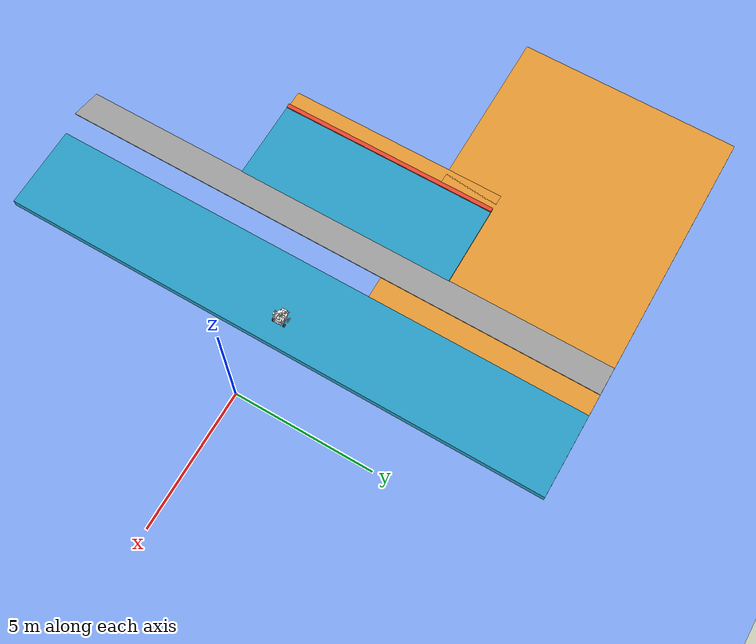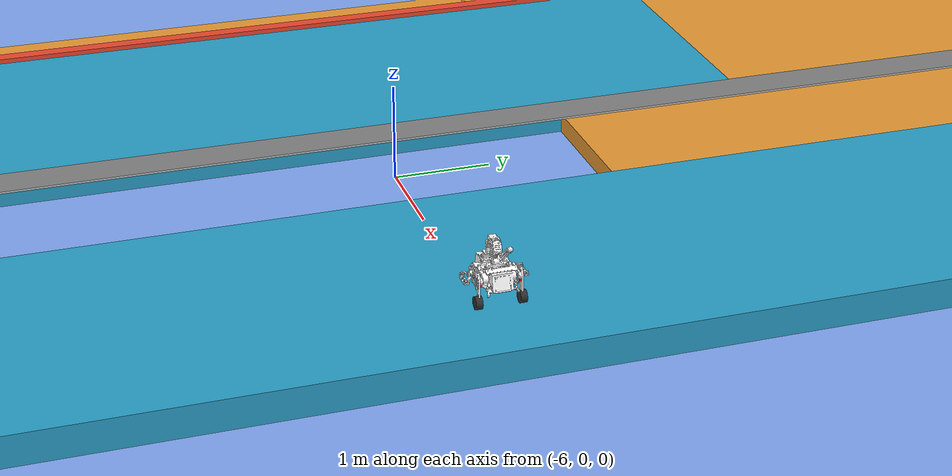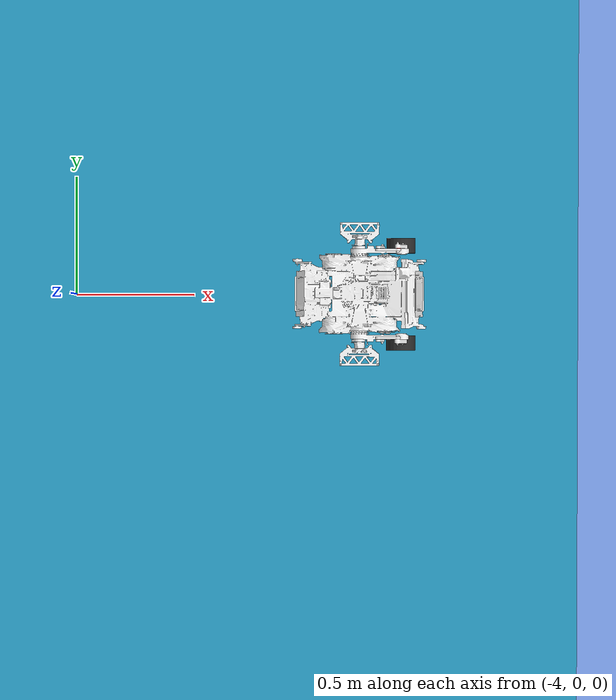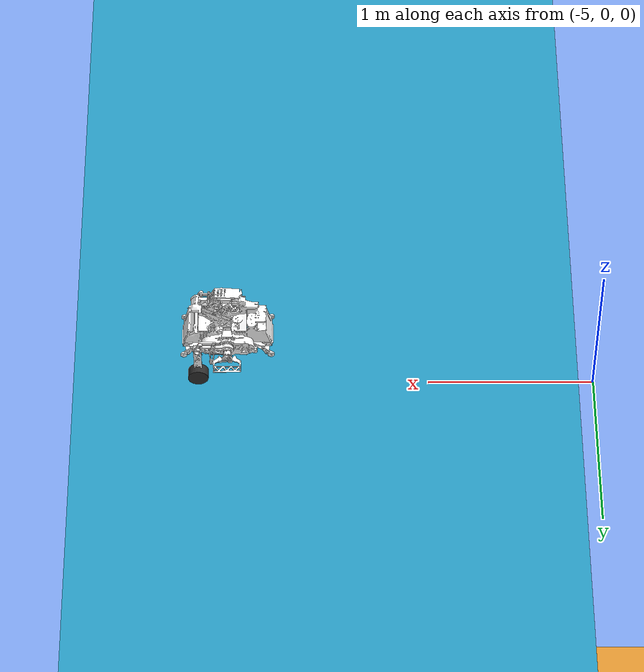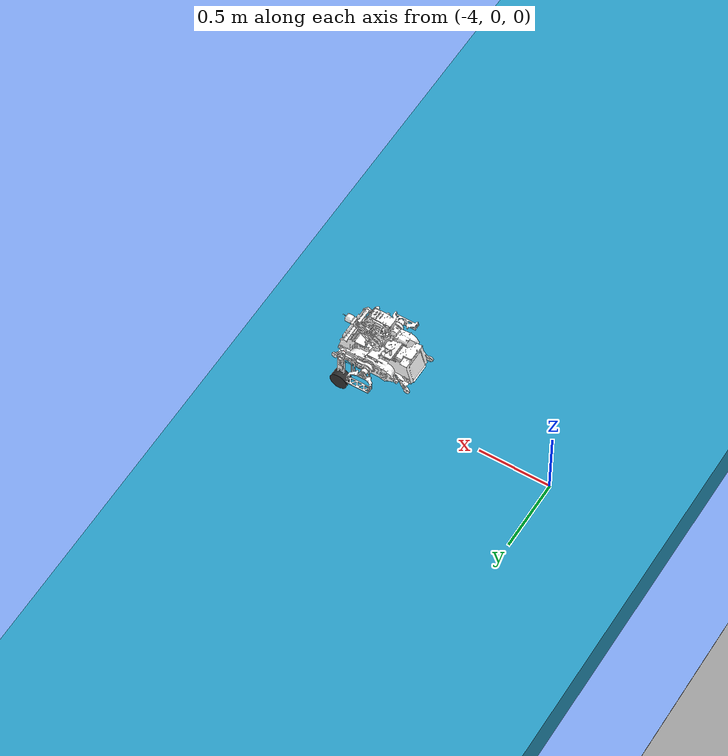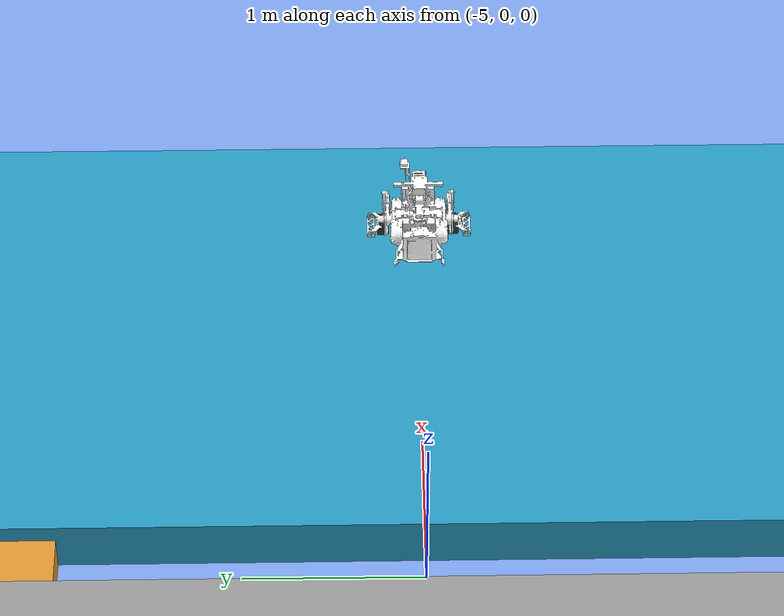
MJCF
<mujoco model="infantry_V2">
  <compiler angle="radian"/>
  <option solver="Newton" iterations="100" tolerance="1e-10"/>

  <default>
    <geom contype="1" conaffinity="2"/>
  </default>

  <asset>
    <mesh name="base_Link_del" file="base_Link_del.STL"/>
    <mesh name="rf0_Link" file="rf0_Link.STL"/>
    <mesh name="rf1_Link" file="rf1_Link.STL"/>
    <mesh name="r_wheel_Link" file="r_wheel_Link.STL"/>
    <mesh name="lf0_Link" file="lf0_Link.STL"/>
    <mesh name="lf1_Link" file="lf1_Link.STL"/>
    <mesh name="l_wheel_Link" file="l_wheel_Link.STL"/>
    <mesh name="r20_Link" file="r20_Link.STL"/>
    <mesh name="r21_Link" file="r21_Link.STL"/>
    <mesh name="r22_Link" file="r22_Link.STL"/>
    <mesh name="r23_Link" file="r23_Link.STL"/>
    <mesh name="l20_Link" file="l20_Link.STL"/>
    <mesh name="l21_Link" file="l21_Link.STL"/>
    <mesh name="l22_Link" file="l22_Link.STL"/>
    <mesh name="l23_Link" file="l23_Link.STL"/>

    <material name="floor_gray"
          rgba="0.65 0.65 0.65 1"
          specular="0.15"
          shininess="0.6"/>

    <!-- 蓝色方格纹理 -->
    <texture name="blue_checker_tex"
           type="2d"
           builtin="checker"
           width="512"
           height="512"
           rgb1="0.2 0.4 0.9"
           rgb2="0.8 0.9 1.0"/>

    <!-- 地面材质 -->
    <material name="blue_checker_mat"
            texture="blue_checker_tex"
            texrepeat="20 20"
            reflectance="0.1"/>
    <hfield name="terrain_hf"
            file="terrain_hfield.png"
            size="3.2 2.4 0.45 0.06"/>
  </asset>

<worldbody>
  <geom name="floor" type="plane" size="40 40 0.1"
    material="blue_checker_mat"
    contype="2" conaffinity="1"/>

  <geom name="step_20cm"
      type="box"
      pos="-10.0 0.0 0.10"
      size="0.30 4.0 0.10"
      rgba="0.9 0.6 0.2 1"
      contype="2" conaffinity="1"/>

    <geom name="step_20rightcm"
      type="box"
      pos="-10.0 6.0 0.10"
      size="6.0 4.0 0.10"
      rgba="0.9 0.6 0.2 1"
      contype="2" conaffinity="1"/>
  <geom name="step_35cm"
      type="box"
      pos="-9.625 0.0 0.175"
      size="0.075 4.0 0.175"
      rgba="0.92 0.28 0.18 1"
      contype="2" conaffinity="1"/>
  <geom name="platform_30cm"
      type="box"
      pos="-8.05 0.0 0.15"
      size="1.5 4.0 0.15"
      rgba="0.16 0.62 0.78 1"
      contype="2" conaffinity="1"/>

  <geom name="fly_ramp_1"
      type="box"
      pos="-6.11 0.0 0.46"
      euler="0 -0.296706 0"
      size="0.5986 10 0.01"
      rgba="0.6 0.6 0.6 1"
      contype="2" conaffinity="1"/>
  <geom name="landing_box"
      type="box"
      pos="-3.38 0.0 0.15"
      size="1.5 10.0 0.15"
      rgba="0.16 0.62 0.78 1"
      contype="2" conaffinity="1"/>

    <body name="base_Link_del" pos="-2.8 0 0.5" quat="1 0 0 0">
    <freejoint/>
    <inertial
    pos="-0.00406060 0.0008523 0.09714204"
    mass="16.8775740"
    fullinertia="0.3595155 0.35249 0.45655 -0.00174358 -0.00825907 -0.00214156"/>
    <site name="imu_site" pos="0 0 0" size="0.005"/>
    <geom name="base_Link_del_geom" type="mesh" rgba="1 1 1 1" mesh="base_Link_del"
            condim="1" friction="0 0 0"/>
    <body name="rf0_Link" pos="0 -0.1877 0.08725" quat="0.707105 0.707108 0 0">
      <inertial pos="0.0552763 -0.0165544 -0.00927161" quat="-0.005176 0.693173 0.0544357 0.718694" mass="1.1132" diaginertia="0.00641833 0.00468513 0.00204569"/>
      <joint name="rf0_Joint" pos="0 0 0" axis="0 0 1" armature="0" damping="0.03" frictionloss="0.015" range="-100 100" actuatorfrcrange="-100 100"/>
      <geom type="mesh" rgba="1 1 1 1" mesh="rf0_Link"/>
      <site name="Right_front_site1" pos="0.09435 0 0" size="0.005" rgba="1 0 0 1"/>
      <site name="right_lf0_qitanhuang" pos ="0.0155 -0.0445 -0.008" size="0.005" rgba="1 0 0 1"/>
      <body name="rf1_Link" pos="0.17472 0 0">
        <inertial pos="-0.00283459 -0.0710676 0.0068255" quat="0.483182 0.50274 -0.490133 0.523027" mass="0.306873" diaginertia="0.0025405 0.00248016 8.5602e-05"/>
        <joint name="rf1_Joint" pos="0 0 0" axis="0 0 1" armature="0.00" damping="0.03" frictionloss="0.015" limited="true" range="-1.1 0.63" actuatorfrcrange="-100 100"/>
        <geom type="mesh" rgba="1 1 1 1" mesh="rf1_Link"/>
        <site name="Right_front_site2" pos="-0.0160931 0.0609099 0" size="0.005" rgba="1 0 0 1"/>
        <site name="right_lf1_qitanhuang" pos ="0.005 -0.046 -0.005" size="0.01" rgba="1 0 0 1"/>
        <body name="r_wheel_Link" pos="0 -0.208 0.016">
          <inertial pos="4.1184e-06 -0.00019289 0.019562" mass="0.4904" fullinertia="0.00033958 0.00034133 0.0005817 0 0 0"/>
          <joint name="r_wheel_Joint" pos="0 0 0" axis="0 0 1" damping="0.002" frictionloss="0.001" actuatorfrcrange="-100 100"/>
          <geom type="cylinder" size="0.06 0.03075" rgba="0.18 0.18 0.18 1"/>
        </body>
      </body>
    </body>
    <body name="lf0_Link" pos="0 0.1877 0.08725" quat="0.707105 -0.707108 0 0">
      <inertial pos="0.055403 0.016584 -0.0092702" quat="0.00463484 0.693099 -0.0538381 0.718814" mass="1.1128" diaginertia="0.00641157 0.0046755 0.00204815"/>
      <joint name="lf0_Joint" pos="0 0 0" axis="0 0 1" armature="0" damping="0.03" frictionloss="0.015" range="-100 100" actuatorfrcrange="-100 100"/>
      <geom type="mesh" rgba="1 1 1 1" mesh="lf0_Link"/>
      <site name="Left_front_site1" pos="0.09435 0 0" size="0.005" rgba="1 0 0 1"/>
      <site name="left_lf0_qitanhuang" pos ="0.0155 0.0445 -0.008" size="0.005" rgba="1 0 0 1"/>
      <body name="lf1_Link" pos="0.17472 0 0">
        <inertial pos="-0.0028358 0.071068 0.0068255" quat="0.50274 0.483182 -0.523027 0.490133" mass="0.30687" diaginertia="0.0025405 0.00248016 8.5602e-05"/>
        <joint name="lf1_Joint" pos="0 0 0" axis="0 0 1" armature="0.00" damping="0.03" frictionloss="0.015" limited="true" range="-0.63 1.1" actuatorfrcrange="-100 100"/>
        <geom type="mesh" rgba="1 1 1 1" mesh="lf1_Link"/>
        <site name="Left_front_site2" pos="-0.0160931 -0.0609099 0" size="0.01" rgba="1 0 0 1"/>
        <site name="left_lf1_qitanhuang" pos ="0.005 0.046 -0.005" size="0.01" rgba="1 0 0 1"/>
        <body name="l_wheel_Link" pos="0 0.208 0.016">
          <inertial pos="-4.1184e-06 0.00019289 0.019562" mass="0.4904" fullinertia="0.00033958 0.00034133 0.0005817 0 0 0"/>
          <joint name="l_wheel_Joint" pos="0 0 0" axis="0 0 1" damping="0.002" frictionloss="0.001" actuatorfrcrange="-100 100"/>
          <geom type="cylinder" size="0.06 0.03075" rgba="0.18 0.18 0.18 1"/>
        </body>
      </body>
    </body>
    <body name="r20_Link" pos="0 -0.1877 0.08725" quat="0.707105 0.707108 0 0">
      <inertial pos="-0.0077129 -0.044014 0.0053168" quat="0.54287 0.453598 -0.539995 0.456012" mass="0.058433" diaginertia="0.000101653 9.09634e-05 1.15321e-05"/>
      <joint name="r20_Joint" pos="0 0 0" axis="0 0 1" armature="0.00" damping="0.03" frictionloss="0.015" actuatorfrcrange="-100 100"/>
      <geom type="mesh" rgba="1 1 1 1" mesh="r20_Link"/>
      <body name="r21_Link" pos="-0.016285 -0.092933 0.01">
        <inertial pos="0.05374 -0.013258 -0.01451" quat="0.0690441 0.704772 -0.0560118 0.70384" mass="0.042999" diaginertia="7.83158e-05 7.61359e-05 2.77956e-06"/>
        <joint name="r21_Link" pos="0 0 0" axis="0 0 1" actuatorfrcrange="-100 100"/>
        <geom type="mesh" rgba="1 1 1 1" mesh="r21_Link"/>
        <body name="r22_Link" pos="0.11063 -0.019387 0">
          <inertial pos="-0.006381 0.08888 -0.0045" quat="0.475753 0.523125 -0.475753 0.523125" mass="0.065877" diaginertia="0.00021104 0.000205523 6.41108e-06"/>
          <joint name="r22_Joint" pos="0 0 0" axis="0 0 1" actuatorfrcrange="-100 100"/>
          <geom type="mesh" rgba="1 1 1 1" mesh="r22_Link"/>
          <site name="Right_rear_site1" pos="0 0.11232 0" size="0.005" rgba="1 1 0 1"/>
          <body name="r23_Link" pos="-0.018032 0.17268 0">
            <inertial pos="0.040186 0 -0.014509" quat="0 0.707107 0 0.707107" mass="0.010945" diaginertia="1.0337e-05 9.8695e-06 6.2034e-07"/>
            <joint name="r23_Joint" pos="0 0 0" axis="0 0 1" actuatorfrcrange="-100 100"/>
            <geom type="mesh" rgba="1 1 1 1" mesh="r23_Link"/>
            <site name="Right_rear_site2" pos="0.08037 0 0" size="0.005" rgba="1 1 0 1"/>
          </body>
        </body>
      </body>
    </body>
    <body name="l20_Link" pos="0 0.1877 0.08725" quat="0.707105 -0.707108 0 0">
      <inertial pos="-0.0077129 -0.044014 0.0053168" quat="-0.066476 0.705194 0.0534809 0.703863" mass="0.058433" diaginertia="7.83158e-05 7.61355e-05 2.77958e-06"/>
      <joint name="l20_Joint" pos="0 0 0" axis="0 0 1" armature="0.00" damping="0.03" frictionloss="0.015" actuatorfrcrange="-100 100"/>
      <geom type="mesh" rgba="1 1 1 1" mesh="l20_Link"/>
      <body name="l21_Link" pos="-0.016285 0.092933 0.01">
        <inertial pos="0.055588 0.013582 -0.01451" quat="-0.066476 0.705194 0.0534809 0.703863" mass="0.042999" diaginertia="7.83158e-05 7.61355e-05 2.77958e-06"/>
        <joint name="l21_Joint" pos="0 0 0" axis="0 0 1" actuatorfrcrange="-100 100"/>
        <geom type="mesh" rgba="1 1 1 1" mesh="l21_Link"/>
        <body name="l22_Link" pos="0.11063 0.019387 0">
          <inertial pos="-0.006381 -0.08888 -0.0045" quat="0.523125 0.475753 -0.523125 0.475753" mass="0.065877" diaginertia="0.00021104 0.000205523 6.41108e-06"/>
          <joint name="l22_Joint" pos="0 0 0" axis="0 0 1" actuatorfrcrange="-100 100"/>
          <geom type="mesh" rgba="1 1 1 1" mesh="l22_Link"/>
          <site name="Left_rear_site1" pos="0 -0.11232 0" size="0.005" rgba="1 1 0 1"/>
          <body name="l23_Link" pos="-0.018032 -0.17268 0">
            <inertial pos="0.040186 0 -0.014509" quat="0 0.707107 0 0.707107" mass="0.010945" diaginertia="1.0337e-05 9.8695e-06 6.2034e-07"/>
            <joint name="l23_Joint" pos="0 0 0" axis="0 0 1" actuatorfrcrange="-100 100"/>
            <geom type="mesh" rgba="1 1 1 1" mesh="l23_Link"/>
            <site name="Left_rear_site2" pos="0.08037 0 0" size="0.005" rgba="1 1 0 1"/>
          </body>
        </body>
      </body>
    </body>
  </body>
</worldbody>

<tendon>
  <spatial name="Left_loop1_tendon" width="0.001">
    <site site="left_lf1_qitanhuang"/>
    <site site="left_lf0_qitanhuang"/>
  </spatial>

  <spatial name="Right_loop1_tendon" width="0.001">
    <site site="right_lf1_qitanhuang"/>
    <site site="right_lf0_qitanhuang"/>
  </spatial>
</tendon>

<actuator>
  <motor name="act_lf0" joint="lf0_Joint" gear="1"/>
  <motor name="act_lf1" joint="lf1_Joint" gear="1"/>
  <motor name="act_lw"  joint="l_wheel_Joint" gear="1"/>

  <motor name="act_rf0" joint="rf0_Joint" gear="1"/>
  <motor name="act_rf1" joint="rf1_Joint" gear="1"/>
  <motor name="act_rw"  joint="r_wheel_Joint" gear="1"/>

  <motor name="act_lf20" joint="l20_Joint" gear="1"/>
  <motor name="act_rf20" joint="r20_Joint" gear="1"/>

  <motor name="Left_loop1_motor" tendon="Left_loop1_tendon" gear="1"/>
  <motor name="Right_loop1_motor" tendon="Right_loop1_tendon" gear="1"/>

</actuator>

<sensor>
  <!-- base imu -->
  <framequat name="orientation" objtype="body" objname="base_Link_del"/>
  <gyro      name="base_ang_vel" site="imu_site"/>
  <accelerometer name="base_lin_acc" site="imu_site"/>

  <!-- joint pos/vel -->
  <jointpos name="lf0_Joint_p" joint="lf0_Joint"/>
  <jointvel name="lf0_Joint_v" joint="lf0_Joint"/>

  <jointpos name="lf1_Joint_p" joint="lf1_Joint"/>
  <jointvel name="lf1_Joint_v" joint="lf1_Joint"/>

  <jointpos name="l_wheel_Joint_p" joint="l_wheel_Joint"/>
  <jointvel name="l_wheel_Joint_v" joint="l_wheel_Joint"/>

  <jointpos name="rf0_Joint_p" joint="rf0_Joint"/>
  <jointvel name="rf0_Joint_v" joint="rf0_Joint"/>

  <jointpos name="rf1_Joint_p" joint="rf1_Joint"/>
  <jointvel name="rf1_Joint_v" joint="rf1_Joint"/>

  <jointpos name="r_wheel_Joint_p" joint="r_wheel_Joint"/>
  <jointvel name="r_wheel_Joint_v" joint="r_wheel_Joint"/>
</sensor>

</mujoco>
